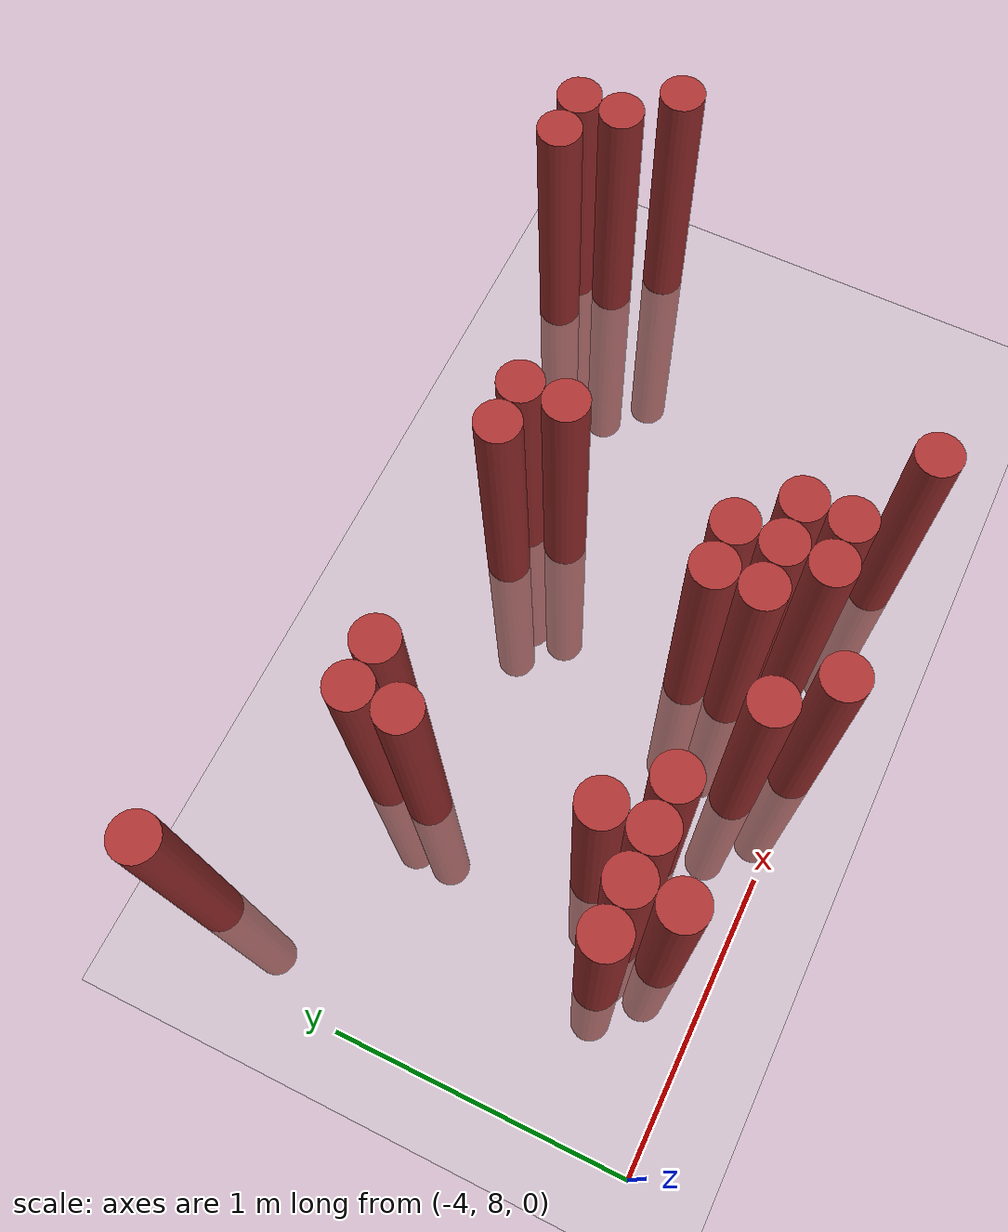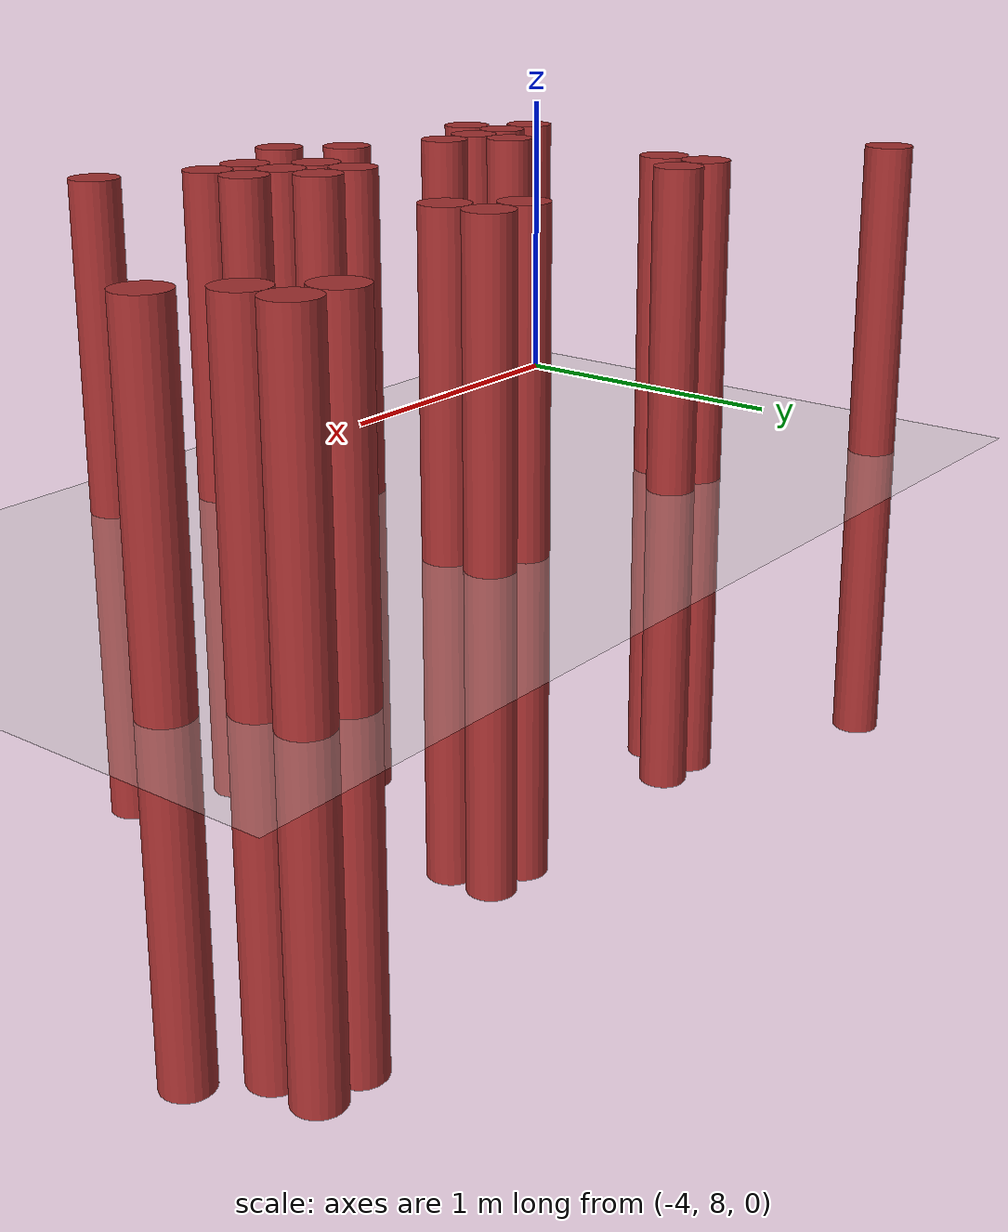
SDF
<sdf version="1.6">
 <world name="default">
  <model name="ground_plane">
   <static>1</static>
   <link name="link">
    <collision name="collision">
     <geometry><plane><normal>0 0 1</normal><size>100 100</size></plane></geometry>
     <surface><friction><ode><mu>100</mu><mu2>50</mu2></ode></friction></surface>
    </collision>
    <visual name="visual">
     <cast_shadows>0</cast_shadows>
     <geometry><plane><normal>0 0 1</normal><size>100 100</size></plane></geometry>
     <material>
      <script><uri>file://media/materials/scripts/gazebo.material</uri><name>Gazebo/Grey</name></script>
     </material>
    </visual>
   </link>
  </model>
  <model name="unit_cylinder_155">
   <static>1</static>
   <pose>-3.825000 9.525000 0.000000 0.000000 0.000000 0.000000</pose>
   <link name="link">
    <inertial>
     <mass>1</mass>
     <inertia><ixx>0.145833</ixx><ixy>0</ixy><ixz>0</ixz><iyy>0.145833</iyy><iyz>0</iyz><izz>0.125</izz></inertia>
    </inertial>
    <collision name="collision">
     <geometry><cylinder><radius>0.075000</radius><length>2</length></cylinder></geometry>
    </collision>
    <visual name="visual">
     <geometry><cylinder><radius>0.075000</radius><length>2</length></cylinder></geometry>
     <material>
      <ambient>0.648000 0.192000 0.192000 1</ambient>
      <diffuse>0.648000 0.192000 0.192000 1</diffuse>
     </material>
     <material>
      <script><name>Gazebo/Grey</name><uri>file://media/materials/scripts/gazebo.material</uri></script>
     </material>
    </visual>
   </link>
  </model>
  <model name="unit_cylinder_160">
   <static>1</static>
   <pose>-3.525000 8.325000 0.000000 0.000000 0.000000 0.000000</pose>
   <link name="link">
    <inertial>
     <mass>1</mass>
     <inertia><ixx>0.145833</ixx><ixy>0</ixy><ixz>0</ixz><iyy>0.145833</iyy><iyz>0</iyz><izz>0.125</izz></inertia>
    </inertial>
    <collision name="collision">
     <geometry><cylinder><radius>0.075000</radius><length>2</length></cylinder></geometry>
    </collision>
    <visual name="visual">
     <geometry><cylinder><radius>0.075000</radius><length>2</length></cylinder></geometry>
     <material>
      <ambient>0.648000 0.192000 0.192000 1</ambient>
      <diffuse>0.648000 0.192000 0.192000 1</diffuse>
     </material>
     <material>
      <script><name>Gazebo/Grey</name><uri>file://media/materials/scripts/gazebo.material</uri></script>
     </material>
    </visual>
   </link>
  </model>
  <model name="unit_cylinder_161">
   <static>1</static>
   <pose>-3.375000 8.175000 0.000000 0.000000 0.000000 0.000000</pose>
   <link name="link">
    <inertial>
     <mass>1</mass>
     <inertia><ixx>0.145833</ixx><ixy>0</ixy><ixz>0</ixz><iyy>0.145833</iyy><iyz>0</iyz><izz>0.125</izz></inertia>
    </inertial>
    <collision name="collision">
     <geometry><cylinder><radius>0.075000</radius><length>2</length></cylinder></geometry>
    </collision>
    <visual name="visual">
     <geometry><cylinder><radius>0.075000</radius><length>2</length></cylinder></geometry>
     <material>
      <ambient>0.648000 0.192000 0.192000 1</ambient>
      <diffuse>0.648000 0.192000 0.192000 1</diffuse>
     </material>
     <material>
      <script><name>Gazebo/Grey</name><uri>file://media/materials/scripts/gazebo.material</uri></script>
     </material>
    </visual>
   </link>
  </model>
  <model name="unit_cylinder_162">
   <static>1</static>
   <pose>-3.375000 8.325000 0.000000 0.000000 0.000000 0.000000</pose>
   <link name="link">
    <inertial>
     <mass>1</mass>
     <inertia><ixx>0.145833</ixx><ixy>0</ixy><ixz>0</ixz><iyy>0.145833</iyy><iyz>0</iyz><izz>0.125</izz></inertia>
    </inertial>
    <collision name="collision">
     <geometry><cylinder><radius>0.075000</radius><length>2</length></cylinder></geometry>
    </collision>
    <visual name="visual">
     <geometry><cylinder><radius>0.075000</radius><length>2</length></cylinder></geometry>
     <material>
      <ambient>0.648000 0.192000 0.192000 1</ambient>
      <diffuse>0.648000 0.192000 0.192000 1</diffuse>
     </material>
     <material>
      <script><name>Gazebo/Grey</name><uri>file://media/materials/scripts/gazebo.material</uri></script>
     </material>
    </visual>
   </link>
  </model>
  <model name="unit_cylinder_163">
   <static>1</static>
   <pose>-3.225000 8.325000 0.000000 0.000000 0.000000 0.000000</pose>
   <link name="link">
    <inertial>
     <mass>1</mass>
     <inertia><ixx>0.145833</ixx><ixy>0</ixy><ixz>0</ixz><iyy>0.145833</iyy><iyz>0</iyz><izz>0.125</izz></inertia>
    </inertial>
    <collision name="collision">
     <geometry><cylinder><radius>0.075000</radius><length>2</length></cylinder></geometry>
    </collision>
    <visual name="visual">
     <geometry><cylinder><radius>0.075000</radius><length>2</length></cylinder></geometry>
     <material>
      <ambient>0.648000 0.192000 0.192000 1</ambient>
      <diffuse>0.648000 0.192000 0.192000 1</diffuse>
     </material>
     <material>
      <script><name>Gazebo/Grey</name><uri>file://media/materials/scripts/gazebo.material</uri></script>
     </material>
    </visual>
   </link>
  </model>
  <model name="unit_cylinder_164">
   <static>1</static>
   <pose>-3.225000 8.475000 0.000000 0.000000 0.000000 0.000000</pose>
   <link name="link">
    <inertial>
     <mass>1</mass>
     <inertia><ixx>0.145833</ixx><ixy>0</ixy><ixz>0</ixz><iyy>0.145833</iyy><iyz>0</iyz><izz>0.125</izz></inertia>
    </inertial>
    <collision name="collision">
     <geometry><cylinder><radius>0.075000</radius><length>2</length></cylinder></geometry>
    </collision>
    <visual name="visual">
     <geometry><cylinder><radius>0.075000</radius><length>2</length></cylinder></geometry>
     <material>
      <ambient>0.648000 0.192000 0.192000 1</ambient>
      <diffuse>0.648000 0.192000 0.192000 1</diffuse>
     </material>
     <material>
      <script><name>Gazebo/Grey</name><uri>file://media/materials/scripts/gazebo.material</uri></script>
     </material>
    </visual>
   </link>
  </model>
  <model name="unit_cylinder_165">
   <static>1</static>
   <pose>-3.225000 9.075000 0.000000 0.000000 0.000000 0.000000</pose>
   <link name="link">
    <inertial>
     <mass>1</mass>
     <inertia><ixx>0.145833</ixx><ixy>0</ixy><ixz>0</ixz><iyy>0.145833</iyy><iyz>0</iyz><izz>0.125</izz></inertia>
    </inertial>
    <collision name="collision">
     <geometry><cylinder><radius>0.075000</radius><length>2</length></cylinder></geometry>
    </collision>
    <visual name="visual">
     <geometry><cylinder><radius>0.075000</radius><length>2</length></cylinder></geometry>
     <material>
      <ambient>0.648000 0.192000 0.192000 1</ambient>
      <diffuse>0.648000 0.192000 0.192000 1</diffuse>
     </material>
     <material>
      <script><name>Gazebo/Grey</name><uri>file://media/materials/scripts/gazebo.material</uri></script>
     </material>
    </visual>
   </link>
  </model>
  <model name="unit_cylinder_166">
   <static>1</static>
   <pose>-3.225000 9.225000 0.000000 0.000000 0.000000 0.000000</pose>
   <link name="link">
    <inertial>
     <mass>1</mass>
     <inertia><ixx>0.145833</ixx><ixy>0</ixy><ixz>0</ixz><iyy>0.145833</iyy><iyz>0</iyz><izz>0.125</izz></inertia>
    </inertial>
    <collision name="collision">
     <geometry><cylinder><radius>0.075000</radius><length>2</length></cylinder></geometry>
    </collision>
    <visual name="visual">
     <geometry><cylinder><radius>0.075000</radius><length>2</length></cylinder></geometry>
     <material>
      <ambient>0.648000 0.192000 0.192000 1</ambient>
      <diffuse>0.648000 0.192000 0.192000 1</diffuse>
     </material>
     <material>
      <script><name>Gazebo/Grey</name><uri>file://media/materials/scripts/gazebo.material</uri></script>
     </material>
    </visual>
   </link>
  </model>
  <model name="unit_cylinder_167">
   <static>1</static>
   <pose>-3.075000 8.325000 0.000000 0.000000 0.000000 0.000000</pose>
   <link name="link">
    <inertial>
     <mass>1</mass>
     <inertia><ixx>0.145833</ixx><ixy>0</ixy><ixz>0</ixz><iyy>0.145833</iyy><iyz>0</iyz><izz>0.125</izz></inertia>
    </inertial>
    <collision name="collision">
     <geometry><cylinder><radius>0.075000</radius><length>2</length></cylinder></geometry>
    </collision>
    <visual name="visual">
     <geometry><cylinder><radius>0.075000</radius><length>2</length></cylinder></geometry>
     <material>
      <ambient>0.648000 0.192000 0.192000 1</ambient>
      <diffuse>0.648000 0.192000 0.192000 1</diffuse>
     </material>
     <material>
      <script><name>Gazebo/Grey</name><uri>file://media/materials/scripts/gazebo.material</uri></script>
     </material>
    </visual>
   </link>
  </model>
  <model name="unit_cylinder_168">
   <static>1</static>
   <pose>-3.075000 9.225000 0.000000 0.000000 0.000000 0.000000</pose>
   <link name="link">
    <inertial>
     <mass>1</mass>
     <inertia><ixx>0.145833</ixx><ixy>0</ixy><ixz>0</ixz><iyy>0.145833</iyy><iyz>0</iyz><izz>0.125</izz></inertia>
    </inertial>
    <collision name="collision">
     <geometry><cylinder><radius>0.075000</radius><length>2</length></cylinder></geometry>
    </collision>
    <visual name="visual">
     <geometry><cylinder><radius>0.075000</radius><length>2</length></cylinder></geometry>
     <material>
      <ambient>0.648000 0.192000 0.192000 1</ambient>
      <diffuse>0.648000 0.192000 0.192000 1</diffuse>
     </material>
     <material>
      <script><name>Gazebo/Grey</name><uri>file://media/materials/scripts/gazebo.material</uri></script>
     </material>
    </visual>
   </link>
  </model>
  <model name="unit_cylinder_170">
   <static>1</static>
   <pose>-2.775000 8.175000 0.000000 0.000000 0.000000 0.000000</pose>
   <link name="link">
    <inertial>
     <mass>1</mass>
     <inertia><ixx>0.145833</ixx><ixy>0</ixy><ixz>0</ixz><iyy>0.145833</iyy><iyz>0</iyz><izz>0.125</izz></inertia>
    </inertial>
    <collision name="collision">
     <geometry><cylinder><radius>0.075000</radius><length>2</length></cylinder></geometry>
    </collision>
    <visual name="visual">
     <geometry><cylinder><radius>0.075000</radius><length>2</length></cylinder></geometry>
     <material>
      <ambient>0.648000 0.192000 0.192000 1</ambient>
      <diffuse>0.648000 0.192000 0.192000 1</diffuse>
     </material>
     <material>
      <script><name>Gazebo/Grey</name><uri>file://media/materials/scripts/gazebo.material</uri></script>
     </material>
    </visual>
   </link>
  </model>
  <model name="unit_cylinder_172">
   <static>1</static>
   <pose>-2.625000 8.025000 0.000000 0.000000 0.000000 0.000000</pose>
   <link name="link">
    <inertial>
     <mass>1</mass>
     <inertia><ixx>0.145833</ixx><ixy>0</ixy><ixz>0</ixz><iyy>0.145833</iyy><iyz>0</iyz><izz>0.125</izz></inertia>
    </inertial>
    <collision name="collision">
     <geometry><cylinder><radius>0.075000</radius><length>2</length></cylinder></geometry>
    </collision>
    <visual name="visual">
     <geometry><cylinder><radius>0.075000</radius><length>2</length></cylinder></geometry>
     <material>
      <ambient>0.648000 0.192000 0.192000 1</ambient>
      <diffuse>0.648000 0.192000 0.192000 1</diffuse>
     </material>
     <material>
      <script><name>Gazebo/Grey</name><uri>file://media/materials/scripts/gazebo.material</uri></script>
     </material>
    </visual>
   </link>
  </model>
  <model name="unit_cylinder_174">
   <static>1</static>
   <pose>-2.475000 8.325000 0.000000 0.000000 0.000000 0.000000</pose>
   <link name="link">
    <inertial>
     <mass>1</mass>
     <inertia><ixx>0.145833</ixx><ixy>0</ixy><ixz>0</ixz><iyy>0.145833</iyy><iyz>0</iyz><izz>0.125</izz></inertia>
    </inertial>
    <collision name="collision">
     <geometry><cylinder><radius>0.075000</radius><length>2</length></cylinder></geometry>
    </collision>
    <visual name="visual">
     <geometry><cylinder><radius>0.075000</radius><length>2</length></cylinder></geometry>
     <material>
      <ambient>0.648000 0.192000 0.192000 1</ambient>
      <diffuse>0.648000 0.192000 0.192000 1</diffuse>
     </material>
     <material>
      <script><name>Gazebo/Grey</name><uri>file://media/materials/scripts/gazebo.material</uri></script>
     </material>
    </visual>
   </link>
  </model>
  <model name="unit_cylinder_175">
   <static>1</static>
   <pose>-2.475000 8.475000 0.000000 0.000000 0.000000 0.000000</pose>
   <link name="link">
    <inertial>
     <mass>1</mass>
     <inertia><ixx>0.145833</ixx><ixy>0</ixy><ixz>0</ixz><iyy>0.145833</iyy><iyz>0</iyz><izz>0.125</izz></inertia>
    </inertial>
    <collision name="collision">
     <geometry><cylinder><radius>0.075000</radius><length>2</length></cylinder></geometry>
    </collision>
    <visual name="visual">
     <geometry><cylinder><radius>0.075000</radius><length>2</length></cylinder></geometry>
     <material>
      <ambient>0.648000 0.192000 0.192000 1</ambient>
      <diffuse>0.648000 0.192000 0.192000 1</diffuse>
     </material>
     <material>
      <script><name>Gazebo/Grey</name><uri>file://media/materials/scripts/gazebo.material</uri></script>
     </material>
    </visual>
   </link>
  </model>
  <model name="unit_cylinder_178">
   <static>1</static>
   <pose>-2.325000 8.175000 0.000000 0.000000 0.000000 0.000000</pose>
   <link name="link">
    <inertial>
     <mass>1</mass>
     <inertia><ixx>0.145833</ixx><ixy>0</ixy><ixz>0</ixz><iyy>0.145833</iyy><iyz>0</iyz><izz>0.125</izz></inertia>
    </inertial>
    <collision name="collision">
     <geometry><cylinder><radius>0.075000</radius><length>2</length></cylinder></geometry>
    </collision>
    <visual name="visual">
     <geometry><cylinder><radius>0.075000</radius><length>2</length></cylinder></geometry>
     <material>
      <ambient>0.648000 0.192000 0.192000 1</ambient>
      <diffuse>0.648000 0.192000 0.192000 1</diffuse>
     </material>
     <material>
      <script><name>Gazebo/Grey</name><uri>file://media/materials/scripts/gazebo.material</uri></script>
     </material>
    </visual>
   </link>
  </model>
  <model name="unit_cylinder_179">
   <static>1</static>
   <pose>-2.325000 8.325000 0.000000 0.000000 0.000000 0.000000</pose>
   <link name="link">
    <inertial>
     <mass>1</mass>
     <inertia><ixx>0.145833</ixx><ixy>0</ixy><ixz>0</ixz><iyy>0.145833</iyy><iyz>0</iyz><izz>0.125</izz></inertia>
    </inertial>
    <collision name="collision">
     <geometry><cylinder><radius>0.075000</radius><length>2</length></cylinder></geometry>
    </collision>
    <visual name="visual">
     <geometry><cylinder><radius>0.075000</radius><length>2</length></cylinder></geometry>
     <material>
      <ambient>0.648000 0.192000 0.192000 1</ambient>
      <diffuse>0.648000 0.192000 0.192000 1</diffuse>
     </material>
     <material>
      <script><name>Gazebo/Grey</name><uri>file://media/materials/scripts/gazebo.material</uri></script>
     </material>
    </visual>
   </link>
  </model>
  <model name="unit_cylinder_180">
   <static>1</static>
   <pose>-2.325000 8.475000 0.000000 0.000000 0.000000 0.000000</pose>
   <link name="link">
    <inertial>
     <mass>1</mass>
     <inertia><ixx>0.145833</ixx><ixy>0</ixy><ixz>0</ixz><iyy>0.145833</iyy><iyz>0</iyz><izz>0.125</izz></inertia>
    </inertial>
    <collision name="collision">
     <geometry><cylinder><radius>0.075000</radius><length>2</length></cylinder></geometry>
    </collision>
    <visual name="visual">
     <geometry><cylinder><radius>0.075000</radius><length>2</length></cylinder></geometry>
     <material>
      <ambient>0.648000 0.192000 0.192000 1</ambient>
      <diffuse>0.648000 0.192000 0.192000 1</diffuse>
     </material>
     <material>
      <script><name>Gazebo/Grey</name><uri>file://media/materials/scripts/gazebo.material</uri></script>
     </material>
    </visual>
   </link>
  </model>
  <model name="unit_cylinder_181">
   <static>1</static>
   <pose>-2.325000 9.225000 0.000000 0.000000 0.000000 0.000000</pose>
   <link name="link">
    <inertial>
     <mass>1</mass>
     <inertia><ixx>0.145833</ixx><ixy>0</ixy><ixz>0</ixz><iyy>0.145833</iyy><iyz>0</iyz><izz>0.125</izz></inertia>
    </inertial>
    <collision name="collision">
     <geometry><cylinder><radius>0.075000</radius><length>2</length></cylinder></geometry>
    </collision>
    <visual name="visual">
     <geometry><cylinder><radius>0.075000</radius><length>2</length></cylinder></geometry>
     <material>
      <ambient>0.648000 0.192000 0.192000 1</ambient>
      <diffuse>0.648000 0.192000 0.192000 1</diffuse>
     </material>
     <material>
      <script><name>Gazebo/Grey</name><uri>file://media/materials/scripts/gazebo.material</uri></script>
     </material>
    </visual>
   </link>
  </model>
  <model name="unit_cylinder_182">
   <static>1</static>
   <pose>-2.175000 8.175000 0.000000 0.000000 0.000000 0.000000</pose>
   <link name="link">
    <inertial>
     <mass>1</mass>
     <inertia><ixx>0.145833</ixx><ixy>0</ixy><ixz>0</ixz><iyy>0.145833</iyy><iyz>0</iyz><izz>0.125</izz></inertia>
    </inertial>
    <collision name="collision">
     <geometry><cylinder><radius>0.075000</radius><length>2</length></cylinder></geometry>
    </collision>
    <visual name="visual">
     <geometry><cylinder><radius>0.075000</radius><length>2</length></cylinder></geometry>
     <material>
      <ambient>0.648000 0.192000 0.192000 1</ambient>
      <diffuse>0.648000 0.192000 0.192000 1</diffuse>
     </material>
     <material>
      <script><name>Gazebo/Grey</name><uri>file://media/materials/scripts/gazebo.material</uri></script>
     </material>
    </visual>
   </link>
  </model>
  <model name="unit_cylinder_183">
   <static>1</static>
   <pose>-2.175000 8.325000 0.000000 0.000000 0.000000 0.000000</pose>
   <link name="link">
    <inertial>
     <mass>1</mass>
     <inertia><ixx>0.145833</ixx><ixy>0</ixy><ixz>0</ixz><iyy>0.145833</iyy><iyz>0</iyz><izz>0.125</izz></inertia>
    </inertial>
    <collision name="collision">
     <geometry><cylinder><radius>0.075000</radius><length>2</length></cylinder></geometry>
    </collision>
    <visual name="visual">
     <geometry><cylinder><radius>0.075000</radius><length>2</length></cylinder></geometry>
     <material>
      <ambient>0.648000 0.192000 0.192000 1</ambient>
      <diffuse>0.648000 0.192000 0.192000 1</diffuse>
     </material>
     <material>
      <script><name>Gazebo/Grey</name><uri>file://media/materials/scripts/gazebo.material</uri></script>
     </material>
    </visual>
   </link>
  </model>
  <model name="unit_cylinder_184">
   <static>1</static>
   <pose>-2.175000 9.075000 0.000000 0.000000 0.000000 0.000000</pose>
   <link name="link">
    <inertial>
     <mass>1</mass>
     <inertia><ixx>0.145833</ixx><ixy>0</ixy><ixz>0</ixz><iyy>0.145833</iyy><iyz>0</iyz><izz>0.125</izz></inertia>
    </inertial>
    <collision name="collision">
     <geometry><cylinder><radius>0.075000</radius><length>2</length></cylinder></geometry>
    </collision>
    <visual name="visual">
     <geometry><cylinder><radius>0.075000</radius><length>2</length></cylinder></geometry>
     <material>
      <ambient>0.648000 0.192000 0.192000 1</ambient>
      <diffuse>0.648000 0.192000 0.192000 1</diffuse>
     </material>
     <material>
      <script><name>Gazebo/Grey</name><uri>file://media/materials/scripts/gazebo.material</uri></script>
     </material>
    </visual>
   </link>
  </model>
  <model name="unit_cylinder_185">
   <static>1</static>
   <pose>-2.175000 9.225000 0.000000 0.000000 0.000000 0.000000</pose>
   <link name="link">
    <inertial>
     <mass>1</mass>
     <inertia><ixx>0.145833</ixx><ixy>0</ixy><ixz>0</ixz><iyy>0.145833</iyy><iyz>0</iyz><izz>0.125</izz></inertia>
    </inertial>
    <collision name="collision">
     <geometry><cylinder><radius>0.075000</radius><length>2</length></cylinder></geometry>
    </collision>
    <visual name="visual">
     <geometry><cylinder><radius>0.075000</radius><length>2</length></cylinder></geometry>
     <material>
      <ambient>0.648000 0.192000 0.192000 1</ambient>
      <diffuse>0.648000 0.192000 0.192000 1</diffuse>
     </material>
     <material>
      <script><name>Gazebo/Grey</name><uri>file://media/materials/scripts/gazebo.material</uri></script>
     </material>
    </visual>
   </link>
  </model>
  <model name="unit_cylinder_190">
   <static>1</static>
   <pose>-1.875000 8.025000 0.000000 0.000000 0.000000 0.000000</pose>
   <link name="link">
    <inertial>
     <mass>1</mass>
     <inertia><ixx>0.145833</ixx><ixy>0</ixy><ixz>0</ixz><iyy>0.145833</iyy><iyz>0</iyz><izz>0.125</izz></inertia>
    </inertial>
    <collision name="collision">
     <geometry><cylinder><radius>0.075000</radius><length>2</length></cylinder></geometry>
    </collision>
    <visual name="visual">
     <geometry><cylinder><radius>0.075000</radius><length>2</length></cylinder></geometry>
     <material>
      <ambient>0.648000 0.192000 0.192000 1</ambient>
      <diffuse>0.648000 0.192000 0.192000 1</diffuse>
     </material>
     <material>
      <script><name>Gazebo/Grey</name><uri>file://media/materials/scripts/gazebo.material</uri></script>
     </material>
    </visual>
   </link>
  </model>
  <model name="unit_cylinder_198">
   <static>1</static>
   <pose>-1.275000 9.525000 0.000000 0.000000 0.000000 0.000000</pose>
   <link name="link">
    <inertial>
     <mass>1</mass>
     <inertia><ixx>0.145833</ixx><ixy>0</ixy><ixz>0</ixz><iyy>0.145833</iyy><iyz>0</iyz><izz>0.125</izz></inertia>
    </inertial>
    <collision name="collision">
     <geometry><cylinder><radius>0.075000</radius><length>2</length></cylinder></geometry>
    </collision>
    <visual name="visual">
     <geometry><cylinder><radius>0.075000</radius><length>2</length></cylinder></geometry>
     <material>
      <ambient>0.648000 0.192000 0.192000 1</ambient>
      <diffuse>0.648000 0.192000 0.192000 1</diffuse>
     </material>
     <material>
      <script><name>Gazebo/Grey</name><uri>file://media/materials/scripts/gazebo.material</uri></script>
     </material>
    </visual>
   </link>
  </model>
  <model name="unit_cylinder_199">
   <static>1</static>
   <pose>-1.125000 9.375000 0.000000 0.000000 0.000000 0.000000</pose>
   <link name="link">
    <inertial>
     <mass>1</mass>
     <inertia><ixx>0.145833</ixx><ixy>0</ixy><ixz>0</ixz><iyy>0.145833</iyy><iyz>0</iyz><izz>0.125</izz></inertia>
    </inertial>
    <collision name="collision">
     <geometry><cylinder><radius>0.075000</radius><length>2</length></cylinder></geometry>
    </collision>
    <visual name="visual">
     <geometry><cylinder><radius>0.075000</radius><length>2</length></cylinder></geometry>
     <material>
      <ambient>0.648000 0.192000 0.192000 1</ambient>
      <diffuse>0.648000 0.192000 0.192000 1</diffuse>
     </material>
     <material>
      <script><name>Gazebo/Grey</name><uri>file://media/materials/scripts/gazebo.material</uri></script>
     </material>
    </visual>
   </link>
  </model>
  <model name="unit_cylinder_200">
   <static>1</static>
   <pose>-1.125000 9.525000 0.000000 0.000000 0.000000 0.000000</pose>
   <link name="link">
    <inertial>
     <mass>1</mass>
     <inertia><ixx>0.145833</ixx><ixy>0</ixy><ixz>0</ixz><iyy>0.145833</iyy><iyz>0</iyz><izz>0.125</izz></inertia>
    </inertial>
    <collision name="collision">
     <geometry><cylinder><radius>0.075000</radius><length>2</length></cylinder></geometry>
    </collision>
    <visual name="visual">
     <geometry><cylinder><radius>0.075000</radius><length>2</length></cylinder></geometry>
     <material>
      <ambient>0.648000 0.192000 0.192000 1</ambient>
      <diffuse>0.648000 0.192000 0.192000 1</diffuse>
     </material>
     <material>
      <script><name>Gazebo/Grey</name><uri>file://media/materials/scripts/gazebo.material</uri></script>
     </material>
    </visual>
   </link>
  </model>
  <model name="unit_cylinder_201">
   <static>1</static>
   <pose>-0.975000 9.225000 0.000000 0.000000 0.000000 0.000000</pose>
   <link name="link">
    <inertial>
     <mass>1</mass>
     <inertia><ixx>0.145833</ixx><ixy>0</ixy><ixz>0</ixz><iyy>0.145833</iyy><iyz>0</iyz><izz>0.125</izz></inertia>
    </inertial>
    <collision name="collision">
     <geometry><cylinder><radius>0.075000</radius><length>2</length></cylinder></geometry>
    </collision>
    <visual name="visual">
     <geometry><cylinder><radius>0.075000</radius><length>2</length></cylinder></geometry>
     <material>
      <ambient>0.648000 0.192000 0.192000 1</ambient>
      <diffuse>0.648000 0.192000 0.192000 1</diffuse>
     </material>
     <material>
      <script><name>Gazebo/Grey</name><uri>file://media/materials/scripts/gazebo.material</uri></script>
     </material>
    </visual>
   </link>
  </model>
 </world>
</sdf>
